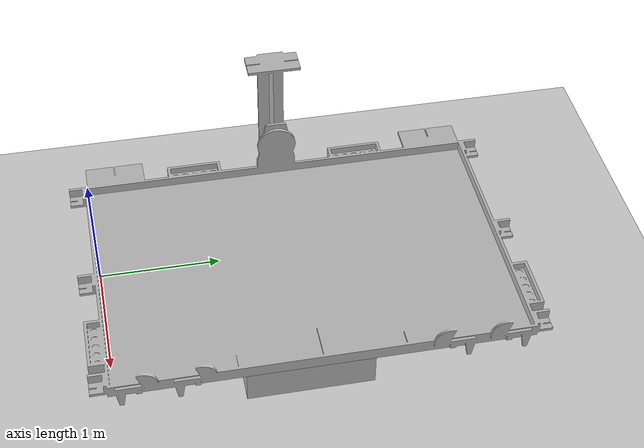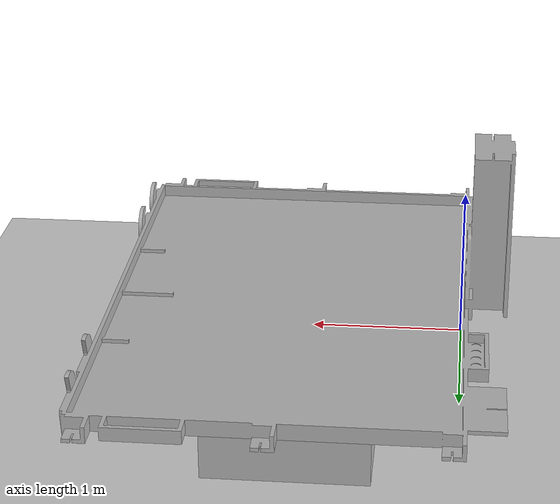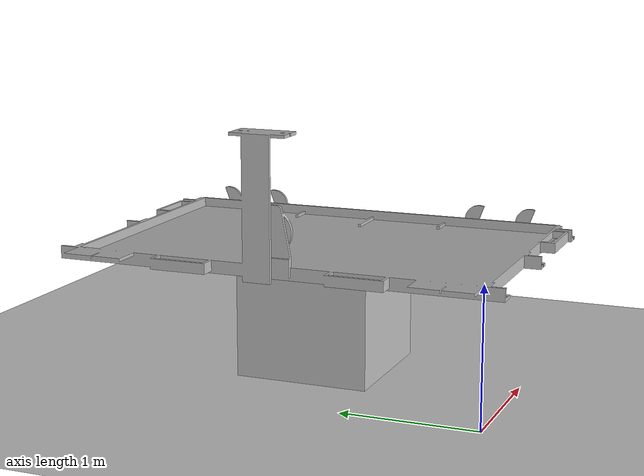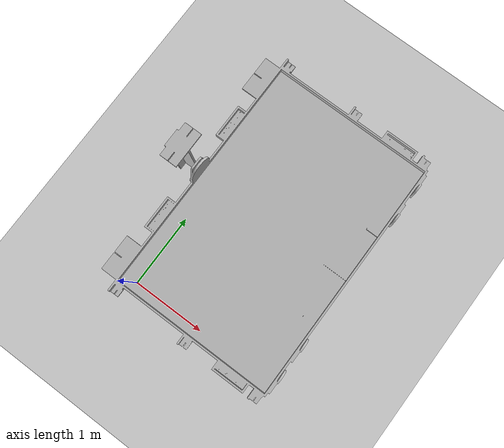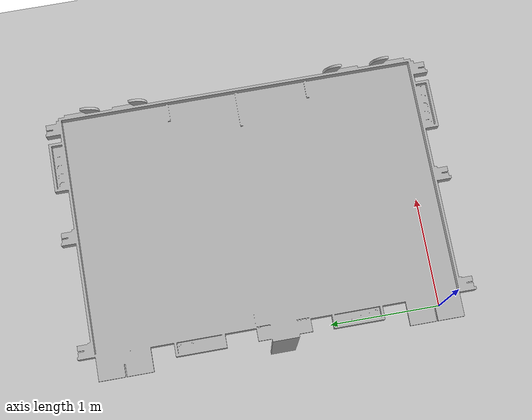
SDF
<sdf version="1.6">
 <world name="default">
  <light name="sun" type="directional">
   <pose>0 0 10 0 -0 0</pose>
   <diffuse>0.8 0.8 0.8 1</diffuse>
   <specular>0.2 0.2 0.2 1</specular>
   <attenuation>
    <range>1000</range>
    <constant>0.9</constant>
    <linear>0.01</linear>
    <quadratic>0.001</quadratic>
   </attenuation>
   <direction>-0.5 0.1 -0.9</direction>
  </light>
  <model name="ground_plane">
   <static>1</static>
   <link name="link">
    <collision name="collision">
     <geometry><plane><normal>0 0 1</normal><size>100 100</size></plane></geometry>
     <surface><friction><ode><mu>100</mu><mu2>50</mu2></ode></friction></surface>
    </collision>
    <visual name="visual">
     <cast_shadows>0</cast_shadows>
     <geometry><plane><normal>0 0 1</normal><size>100 100</size></plane></geometry>
     <material>
      <script><uri>file://media/materials/scripts/gazebo.material</uri><name>Gazebo/Grey</name></script>
     </material>
    </visual>
   </link>
  </model>
  <gravity>0 0 -9.8</gravity>
  <magnetic_field>6e-06 2.3e-05 -4.2e-05</magnetic_field>
  <atmosphere type="adiabatic"/>
  <physics name="default_physics" default="0" type="ode">
   <max_step_size>0.001</max_step_size>
   <real_time_factor>1</real_time_factor>
   <real_time_update_rate>1000</real_time_update_rate>
  </physics>
  <scene><ambient>0.4 0.4 0.4 1</ambient><background>0.7 0.7 0.7 1</background><shadows>1</shadows></scene>
  <audio><device>default</device></audio>
  <spherical_coordinates>
   <surface_model>EARTH_WGS84</surface_model>
   <latitude_deg>0</latitude_deg>
   <longitude_deg>0</longitude_deg>
   <elevation>0</elevation>
   <heading_deg>0</heading_deg>
  </spherical_coordinates>
  <model name="table_eurobot_2020">
   <pose>1 1.5 0 0 -0 1.5708</pose>
   <static>1</static>
   <link name="table">
    <inertial>
     <mass>15</mass>
     <inertia><ixx>0.083</ixx><ixy>0</ixy><ixz>0</ixz><iyy>0.083</iyy><iyz>0</iyz><izz>0.083</izz></inertia>
    </inertial>
    <collision name="table_collision">
     <pose>0 0 0.9 0 -0 0</pose>
     <geometry><mesh><uri>model://table_eurobot_2020/meshes/table.dae</uri><scale>1 1 1</scale></mesh></geometry>
    </collision>
    <visual name="table_visual">
     <pose>-1.5 1 0.9 1.57 -0 0</pose>
     <geometry>
      <mesh><uri>model://table_eurobot_2020/meshes/table_tex2.dae</uri><scale>1 1 1</scale></mesh>
     </geometry>
    </visual>
    <collision name="table_stand_collision">
     <pose>0 0 0.45 0 -0 0</pose>
     <geometry><box><size>1 1 0.9</size></box></geometry>
    </collision>
    <visual name="table_stand_visual">
     <pose>0 0 0.45 0 -0 0</pose>
     <geometry><box><size>1 1 0.9</size></box></geometry>
    </visual>
   </link>
  </model>
  <light name="user_point_light_0" type="point">
   <pose>1.01102 1.44939 1 0 -0 0</pose>
   <diffuse>0.5 0.5 0.5 1</diffuse>
   <specular>0.1 0.1 0.1 1</specular>
   <attenuation>
    <range>20</range>
    <constant>0.5</constant>
    <linear>0.01</linear>
    <quadratic>0.001</quadratic>
   </attenuation>
   <cast_shadows>0</cast_shadows>
   <direction>0 0 -1</direction>
  </light>
 </world>
</sdf>
